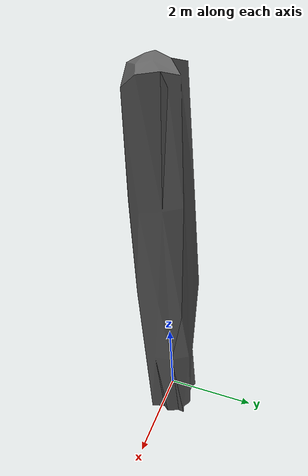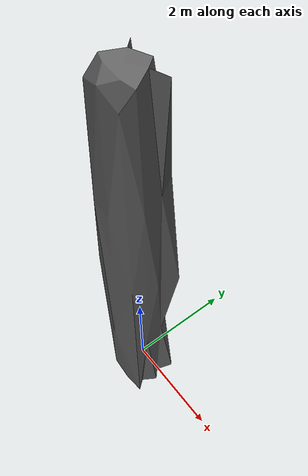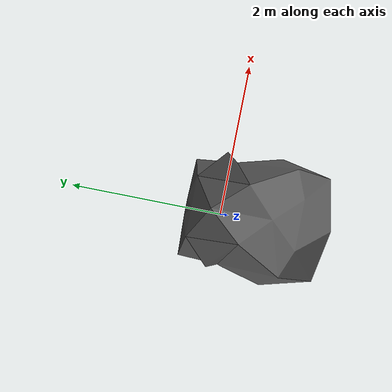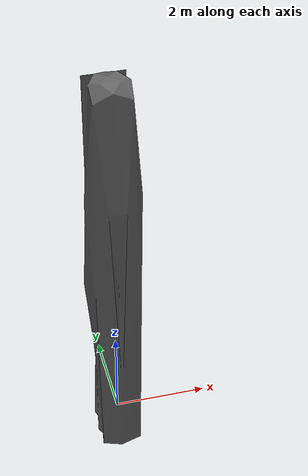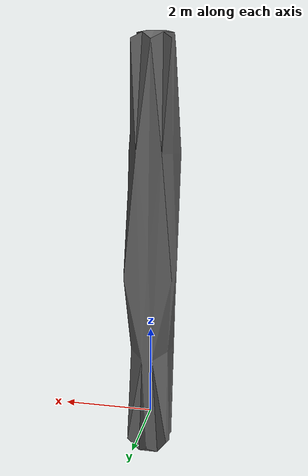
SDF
<?xml version='1.0' ?>
<sdf version='1.6'>
  <model name='Simple Stone'>
    <pose>0 0 0 0 0 0</pose>
    <static>true</static>
    <link name="link">
      <collision name="collision">
        <geometry>
          <mesh>
            <uri>model://Simple Stone/meshes/Simple Stone.dae</uri>
            <scale>1 1 1</scale>
         </mesh>
        </geometry>
      </collision>
      <visual name="visual">
        <geometry>
          <mesh>
            <uri>model://Simple Stone/meshes/Simple Stone.dae</uri>
            <scale>1 1 1</scale>
         </mesh>
        </geometry>
      </visual>
    </link>
  </model>
 </sdf>
